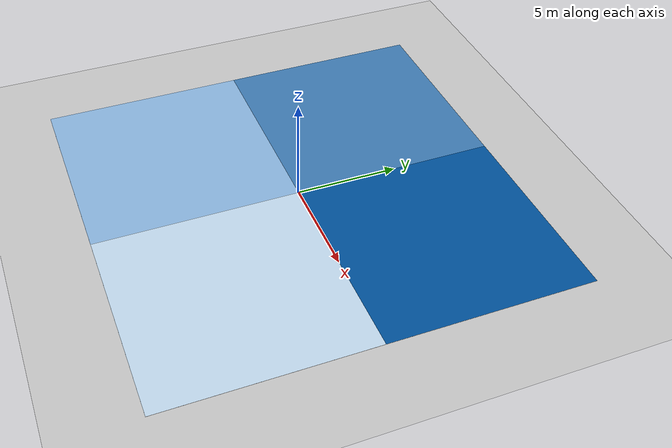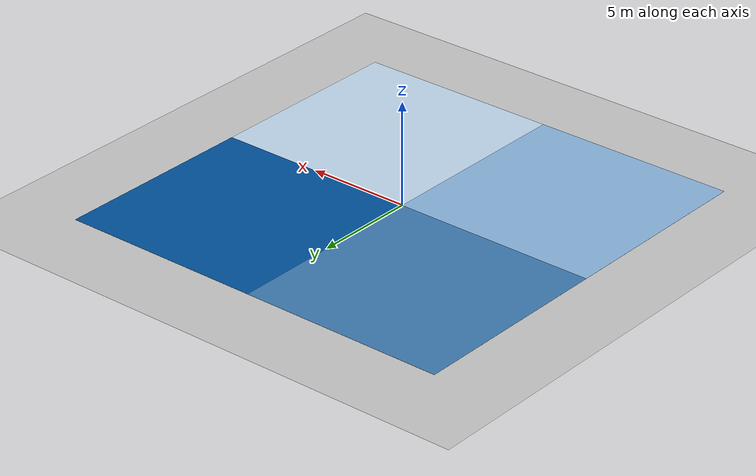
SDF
<sdf version="1.9">
 <world name="empty">
  <physics name="1ms" type="ode">
   <max_step_size>0.001</max_step_size>
   <real_time_update_rate>1000</real_time_update_rate>
   <solver><use_dynamic_moi_rescaling>true</use_dynamic_moi_rescaling></solver>
  </physics>
  <plugin name="gz::sim::systems::Physics" filename="ignition-gazebo-physics-system"/>
  <plugin name="gz::sim::systems::UserCommands" filename="ignition-gazebo-user-commands-system"/>
  <plugin name="gz::sim::systems::SceneBroadcaster" filename="ignition-gazebo-scene-broadcaster-system"/>
  <plugin name="gz::sim::systems::Contact" filename="ignition-gazebo-contact-system"/>
  <gravity>0 0 -9.8</gravity>
  <magnetic_field>6e-06 2.3e-05 -4.2e-05</magnetic_field>
  <atmosphere type="adiabatic"/>
  <scene><ambient>0.4 0.4 0.4 1</ambient><background>0.7 0.7 0.7 1</background><shadows>true</shadows></scene>
  <model name="ground_plane">
   <static>true</static>
   <link name="link">
    <collision name="collision">
     <geometry><plane><normal>0 0 1</normal><size>100 100</size></plane></geometry>
    </collision>
    <visual name="visual">
     <geometry><plane><normal>0 0 1</normal><size>100 100</size></plane></geometry>
     <material>
      <ambient>0.8 0.8 0.8 1</ambient>
      <diffuse>0.8 0.8 0.8 1</diffuse>
      <specular>0.8 0.8 0.8 1</specular>
     </material>
    </visual>
    <inertial>
     <mass>1</mass>
     <inertia><ixx>1</ixx><ixy>0</ixy><ixz>0</ixz><iyy>1</iyy><iyz>0</iyz><izz>1</izz></inertia>
    </inertial>
   </link>
  </model>
  <model name="WS1">
   <static>true</static>
   <link name="link">
    <visual name="WS1">
     <geometry><box><size>10 10 0.01</size></box></geometry>
     <material><ambient>0 0.329 0.624 1</ambient><diffuse>0 0.329 0.624 1</diffuse></material>
    </visual>
   </link>
   <pose>5 5 0 0 0 0</pose>
  </model>
  <model name="WS2">
   <static>true</static>
   <link name="link">
    <visual name="WS2">
     <geometry><box><size>10 10 0.01</size></box></geometry>
     <material><ambient>0.251 0.498 0.718 1</ambient><diffuse>0.251 0.498 0.718 1</diffuse></material>
    </visual>
   </link>
   <pose>-5 5 0 0 0 0</pose>
  </model>
  <model name="WS3">
   <static>true</static>
   <link name="link">
    <visual name="WS3">
     <geometry><box><size>10 10 0.01</size></box></geometry>
     <material><ambient>0.557 0.729 0.898 1</ambient><diffuse>0.557 0.729 0.898 1</diffuse></material>
    </visual>
   </link>
   <pose>-5 -5 0 0 0 0</pose>
  </model>
  <model name="WS4">
   <static>true</static>
   <link name="link">
    <visual name="WS4">
     <geometry><box><size>10 10 0.01</size></box></geometry>
     <material><ambient>0.780 0.877 0.960 1</ambient><diffuse>0.780 0.877 0.960 1</diffuse></material>
    </visual>
   </link>
   <pose>5 -5 0 0 0 0</pose>
  </model>
  <light name="sun" type="directional">
   <pose>0 0 10 0 -0 0</pose>
   <intensity>1</intensity>
   <direction>-0.5 0.1 -0.9</direction>
   <diffuse>0.8 0.8 0.8 1</diffuse>
   <specular>0.2 0.2 0.2 1</specular>
   <attenuation>
    <range>1000</range>
    <linear>0.01</linear>
    <constant>0.90000000000000002</constant>
    <quadratic>0.001</quadratic>
   </attenuation>
   <spot><inner_angle>0</inner_angle><outer_angle>0</outer_angle><falloff>0</falloff></spot>
  </light>
  <light name="sun2" type="directional">
   <pose>-5 0 10 0 -0 0</pose>
   <intensity>1</intensity>
   <direction>-0.5 0.1 -0.9</direction>
   <diffuse>0.8 0.8 0.8 1</diffuse>
   <specular>0.2 0.2 0.2 1</specular>
   <attenuation>
    <range>1000</range>
    <linear>0.01</linear>
    <constant>0.90000000000000002</constant>
    <quadratic>0.001</quadratic>
   </attenuation>
   <spot><inner_angle>0</inner_angle><outer_angle>0</outer_angle><falloff>0</falloff></spot>
  </light>
 </world>
</sdf>
